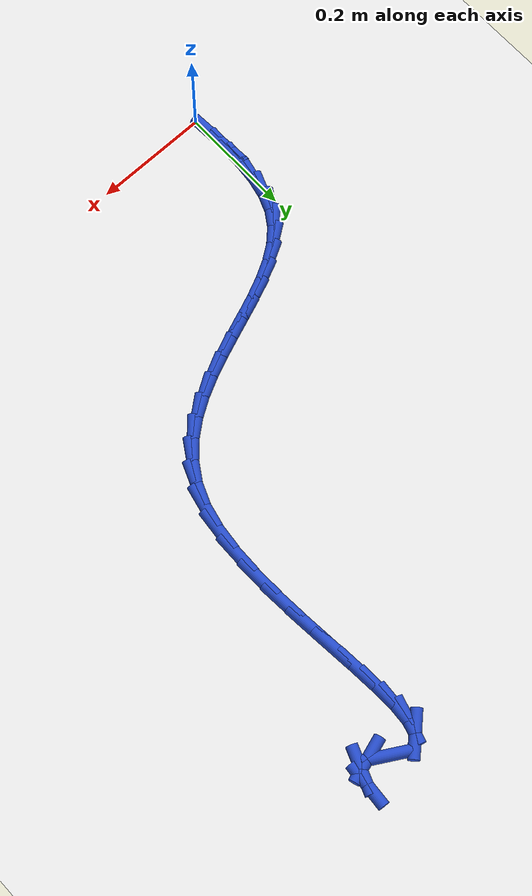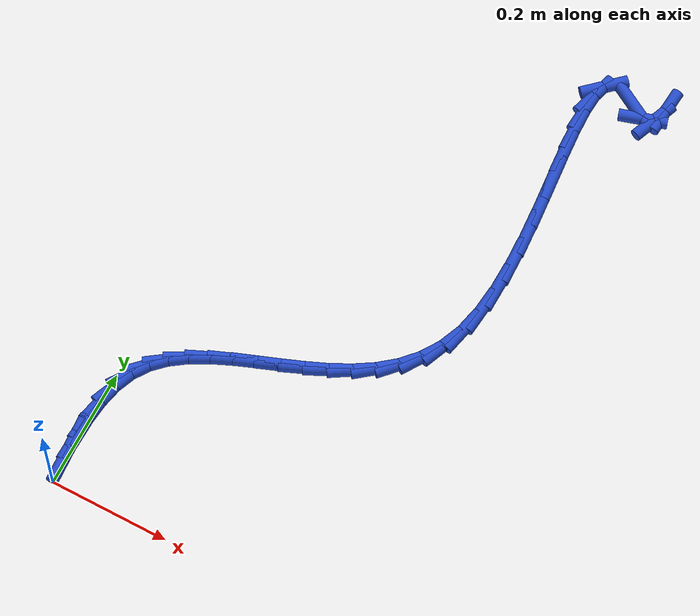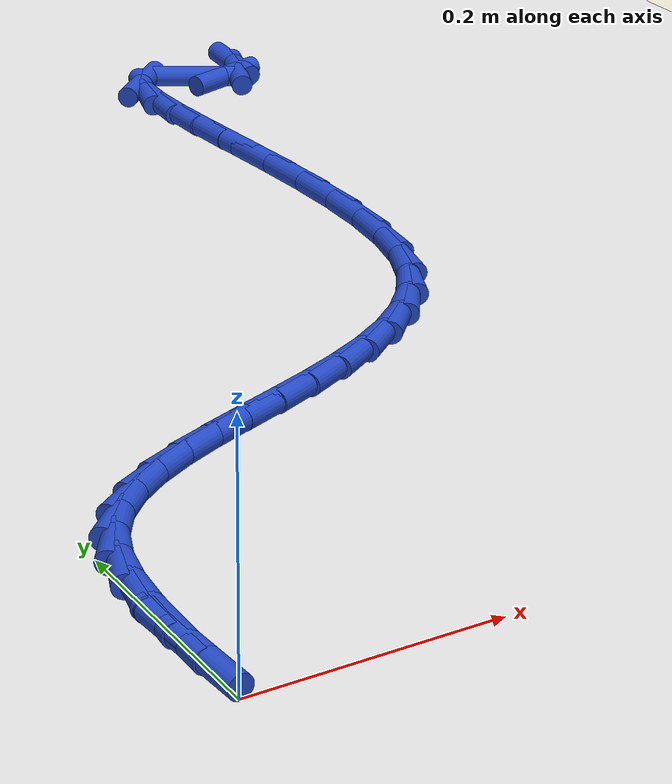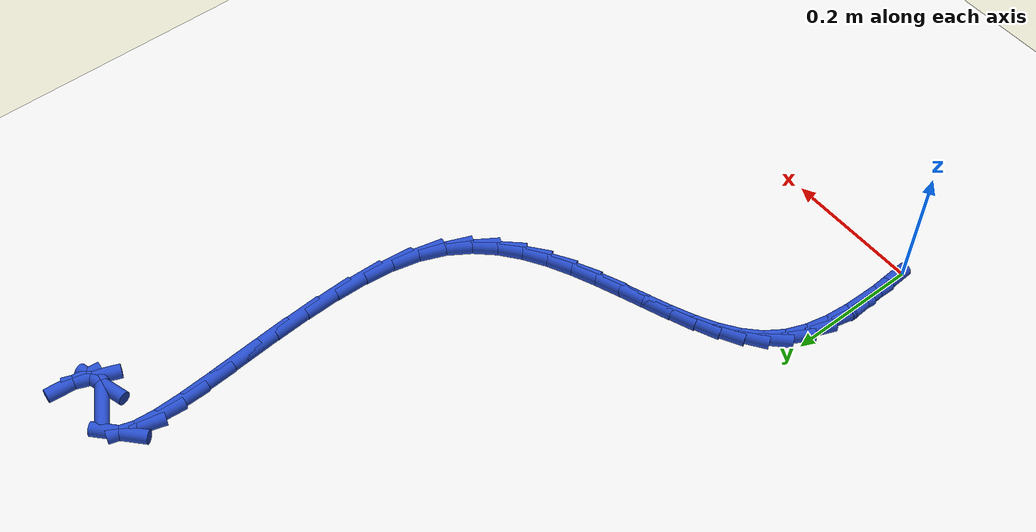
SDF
<sdf version="1.6">
 <world name="default">
  <model name="ground_plane">
   <static>1</static>
   <link name="link">
    <collision name="collision">
     <geometry><plane><normal>0 0 1</normal><size>100 100</size></plane></geometry>
     <surface><friction><ode><mu>100</mu><mu2>50</mu2></ode></friction></surface>
    </collision>
    <visual name="visual">
     <cast_shadows>0</cast_shadows>
     <geometry><plane><normal>0 0 1</normal><size>100 100</size></plane></geometry>
     <material>
      <script><uri>file://media/materials/scripts/gazebo.material</uri><name>Gazebo/WhiteGlow</name></script>
     </material>
    </visual>
   </link>
  </model>
  <model name="line">
   <link name="link_2">
    <pose>-0.003068716779485569 0.07493091604792003 0.01 0 1.57 1.547667495248963</pose>
    <collision name="collision">
     <geometry><cylinder><radius>0.01</radius><length>0.08</length></cylinder></geometry>
    </collision>
    <visual name="visual">
     <material>
      <script><name>Gazebo/Blue</name><uri>file://media/materials/scripts/gazebo.material</uri></script>
     </material>
     <geometry><cylinder><radius>0.01</radius><length>0.08</length></cylinder></geometry>
    </visual>
   </link>
   <link name="link_3">
    <pose>-0.0022136687239871274 0.1118932494490726 0.01 0 1.57 1.4685645919546335</pose>
    <collision name="collision">
     <geometry><cylinder><radius>0.01</radius><length>0.08</length></cylinder></geometry>
    </collision>
    <visual name="visual">
     <material>
      <script><name>Gazebo/Blue</name><uri>file://media/materials/scripts/gazebo.material</uri></script>
     </material>
     <geometry><cylinder><radius>0.01</radius><length>0.08</length></cylinder></geometry>
    </visual>
   </link>
   <link name="link_4">
    <pose>0.0014196297255197436 0.14730918002742974 0.01 0 1.57 1.3528270540345078</pose>
    <collision name="collision">
     <geometry><cylinder><radius>0.01</radius><length>0.08</length></cylinder></geometry>
    </collision>
    <visual name="visual">
     <material>
      <script><name>Gazebo/Blue</name><uri>file://media/materials/scripts/gazebo.material</uri></script>
     </material>
     <geometry><cylinder><radius>0.01</radius><length>0.08</length></cylinder></geometry>
    </visual>
   </link>
   <link name="link_5">
    <pose>0.008720163141920746 0.1802704679772984 0.01 0 1.57 1.1897835376856196</pose>
    <collision name="collision">
     <geometry><cylinder><radius>0.01</radius><length>0.08</length></cylinder></geometry>
    </collision>
    <visual name="visual">
     <material>
      <script><name>Gazebo/Blue</name><uri>file://media/materials/scripts/gazebo.material</uri></script>
     </material>
     <geometry><cylinder><radius>0.01</radius><length>0.08</length></cylinder></geometry>
    </visual>
   </link>
   <link name="link_6">
    <pose>0.020576916098101576 0.2098688734929859 0.01 0 1.57 0.9781830634710151</pose>
    <collision name="collision">
     <geometry><cylinder><radius>0.01</radius><length>0.08</length></cylinder></geometry>
    </collision>
    <visual name="visual">
     <material>
      <script><name>Gazebo/Blue</name><uri>file://media/materials/scripts/gazebo.material</uri></script>
     </material>
     <geometry><cylinder><radius>0.01</radius><length>0.08</length></cylinder></geometry>
    </visual>
   </link>
   <link name="link_7">
    <pose>0.03772929596335416 0.23534218453826133 0.01 0 1.57 0.7739168149898306</pose>
    <collision name="collision">
     <geometry><cylinder><radius>0.01</radius><length>0.08</length></cylinder></geometry>
    </collision>
    <visual name="visual">
     <material>
      <script><name>Gazebo/Blue</name><uri>file://media/materials/scripts/gazebo.material</uri></script>
     </material>
     <geometry><cylinder><radius>0.01</radius><length>0.08</length></cylinder></geometry>
    </visual>
   </link>
   <link name="link_8">
    <pose>0.05985455826962366 0.25696513628483125 0.01 0 1.57 0.6126361274357889</pose>
    <collision name="collision">
     <geometry><cylinder><radius>0.01</radius><length>0.08</length></cylinder></geometry>
    </collision>
    <visual name="visual">
     <material>
      <script><name>Gazebo/Blue</name><uri>file://media/materials/scripts/gazebo.material</uri></script>
     </material>
     <geometry><cylinder><radius>0.01</radius><length>0.08</length></cylinder></geometry>
    </visual>
   </link>
   <link name="link_9">
    <pose>0.08617033610541139 0.2754611796083885 0.01 0 1.57 0.4962904917748917</pose>
    <collision name="collision">
     <geometry><cylinder><radius>0.01</radius><length>0.08</length></cylinder></geometry>
    </collision>
    <visual name="visual">
     <material>
      <script><name>Gazebo/Blue</name><uri>file://media/materials/scripts/gazebo.material</uri></script>
     </material>
     <geometry><cylinder><radius>0.01</radius><length>0.08</length></cylinder></geometry>
    </visual>
   </link>
   <link name="link_10">
    <pose>0.1158924243633311 0.2915555599605287 0.01 0 1.57 0.41932789781211516</pose>
    <collision name="collision">
     <geometry><cylinder><radius>0.01</radius><length>0.08</length></cylinder></geometry>
    </collision>
    <visual name="visual">
     <material>
      <script><name>Gazebo/Blue</name><uri>file://media/materials/scripts/gazebo.material</uri></script>
     </material>
     <geometry><cylinder><radius>0.01</radius><length>0.08</length></cylinder></geometry>
    </visual>
   </link>
   <link name="link_11">
    <pose>0.1482366179359966 0.3059735227928481 0.01 0 1.57 0.37529912207708577</pose>
    <collision name="collision">
     <geometry><cylinder><radius>0.01</radius><length>0.08</length></cylinder></geometry>
    </collision>
    <visual name="visual">
     <material>
      <script><name>Gazebo/Blue</name><uri>file://media/materials/scripts/gazebo.material</uri></script>
     </material>
     <geometry><cylinder><radius>0.01</radius><length>0.08</length></cylinder></geometry>
    </visual>
   </link>
   <link name="link_12">
    <pose>0.18241871171602173 0.31944031355694236 0.01 0 1.57 0.3594533208540768</pose>
    <collision name="collision">
     <geometry><cylinder><radius>0.01</radius><length>0.08</length></cylinder></geometry>
    </collision>
    <visual name="visual">
     <material>
      <script><name>Gazebo/Blue</name><uri>file://media/materials/scripts/gazebo.material</uri></script>
     </material>
     <geometry><cylinder><radius>0.01</radius><length>0.08</length></cylinder></geometry>
    </visual>
   </link>
   <link name="link_13">
    <pose>0.21765450059602023 0.3326811777044076 0.01 0 1.57 0.3692406748582325</pose>
    <collision name="collision">
     <geometry><cylinder><radius>0.01</radius><length>0.08</length></cylinder></geometry>
    </collision>
    <visual name="visual">
     <material>
      <script><name>Gazebo/Blue</name><uri>file://media/materials/scripts/gazebo.material</uri></script>
     </material>
     <geometry><cylinder><radius>0.01</radius><length>0.08</length></cylinder></geometry>
    </visual>
   </link>
   <link name="link_14">
    <pose>0.25315977946860596 0.3464213606868398 0.01 0 1.57 0.4041380281691263</pose>
    <collision name="collision">
     <geometry><cylinder><radius>0.01</radius><length>0.08</length></cylinder></geometry>
    </collision>
    <visual name="visual">
     <material>
      <script><name>Gazebo/Blue</name><uri>file://media/materials/scripts/gazebo.material</uri></script>
     </material>
     <geometry><cylinder><radius>0.01</radius><length>0.08</length></cylinder></geometry>
    </visual>
   </link>
   <link name="link_15">
    <pose>0.2881503432263929 0.3613861079558349 0.01 0 1.57 0.4652783785459308</pose>
    <collision name="collision">
     <geometry><cylinder><radius>0.01</radius><length>0.08</length></cylinder></geometry>
    </collision>
    <visual name="visual">
     <material>
      <script><name>Gazebo/Blue</name><uri>file://media/materials/scripts/gazebo.material</uri></script>
     </material>
     <geometry><cylinder><radius>0.01</radius><length>0.08</length></cylinder></geometry>
    </visual>
   </link>
   <link name="link_16">
    <pose>0.32184198676199444 0.37830066496298875 0.01 0 1.57 0.5548204501725951</pose>
    <collision name="collision">
     <geometry><cylinder><radius>0.01</radius><length>0.08</length></cylinder></geometry>
    </collision>
    <visual name="visual">
     <material>
      <script><name>Gazebo/Blue</name><uri>file://media/materials/scripts/gazebo.material</uri></script>
     </material>
     <geometry><cylinder><radius>0.01</radius><length>0.08</length></cylinder></geometry>
    </visual>
   </link>
   <link name="link_17">
    <pose>0.35345050496802455 0.3978902771598971 0.01 0 1.57 0.6746764997015885</pose>
    <collision name="collision">
     <geometry><cylinder><radius>0.01</radius><length>0.08</length></cylinder></geometry>
    </collision>
    <visual name="visual">
     <material>
      <script><name>Gazebo/Blue</name><uri>file://media/materials/scripts/gazebo.material</uri></script>
     </material>
     <geometry><cylinder><radius>0.01</radius><length>0.08</length></cylinder></geometry>
    </visual>
   </link>
   <link name="link_18">
    <pose>0.3821916927370974 0.4208801899981567 0.01 0 1.57 0.8241834614877726</pose>
    <collision name="collision">
     <geometry><cylinder><radius>0.01</radius><length>0.08</length></cylinder></geometry>
    </collision>
    <visual name="visual">
     <material>
      <script><name>Gazebo/Blue</name><uri>file://media/materials/scripts/gazebo.material</uri></script>
     </material>
     <geometry><cylinder><radius>0.01</radius><length>0.08</length></cylinder></geometry>
    </visual>
   </link>
   <link name="link_19">
    <pose>0.4072813449618263 0.4479956489293626 0.01 0 1.57 0.9971562326662705</pose>
    <collision name="collision">
     <geometry><cylinder><radius>0.01</radius><length>0.08</length></cylinder></geometry>
    </collision>
    <visual name="visual">
     <material>
      <script><name>Gazebo/Blue</name><uri>file://media/materials/scripts/gazebo.material</uri></script>
     </material>
     <geometry><cylinder><radius>0.01</radius><length>0.08</length></cylinder></geometry>
    </visual>
   </link>
   <link name="link_20">
    <pose>0.42793525653482534 0.4799618994051113 0.01 0 1.57 1.1807488606486525</pose>
    <collision name="collision">
     <geometry><cylinder><radius>0.01</radius><length>0.08</length></cylinder></geometry>
    </collision>
    <visual name="visual">
     <material>
      <script><name>Gazebo/Blue</name><uri>file://media/materials/scripts/gazebo.material</uri></script>
     </material>
     <geometry><cylinder><radius>0.01</radius><length>0.08</length></cylinder></geometry>
    </visual>
   </link>
   <link name="link_21">
    <pose>0.44336926136309135 0.5175041380165123 0.01 0 1.57 1.3492541508872864</pose>
    <collision name="collision">
     <geometry><cylinder><radius>0.01</radius><length>0.08</length></cylinder></geometry>
    </collision>
    <visual name="visual">
     <material>
      <script><name>Gazebo/Blue</name><uri>file://media/materials/scripts/gazebo.material</uri></script>
     </material>
     <geometry><cylinder><radius>0.01</radius><length>0.08</length></cylinder></geometry>
    </visual>
   </link>
   <link name="link_22">
    <pose>0.4531465412502351 0.5609125528867348 0.01 0 1.57 1.469672239100606</pose>
    <collision name="collision">
     <geometry><cylinder><radius>0.01</radius><length>0.08</length></cylinder></geometry>
    </collision>
    <visual name="visual">
     <material>
      <script><name>Gazebo/Blue</name><uri>file://media/materials/scripts/gazebo.material</uri></script>
     </material>
     <geometry><cylinder><radius>0.01</radius><length>0.08</length></cylinder></geometry>
    </visual>
   </link>
   <link name="link_23">
    <pose>0.4580241715196973 0.6089821343962547 0.01 0 1.57 1.5514378879321196</pose>
    <collision name="collision">
     <geometry><cylinder><radius>0.01</radius><length>0.08</length></cylinder></geometry>
    </collision>
    <visual name="visual">
     <material>
      <script><name>Gazebo/Blue</name><uri>file://media/materials/scripts/gazebo.material</uri></script>
     </material>
     <geometry><cylinder><radius>0.01</radius><length>0.08</length></cylinder></geometry>
    </visual>
   </link>
   <link name="link_24">
    <pose>0.4590155392117438 0.6601868755383794 0.01 0 1.57 -1.5351861428149904</pose>
    <collision name="collision">
     <geometry><cylinder><radius>0.01</radius><length>0.08</length></cylinder></geometry>
    </collision>
    <visual name="visual">
     <material>
      <script><name>Gazebo/Blue</name><uri>file://media/materials/scripts/gazebo.material</uri></script>
     </material>
     <geometry><cylinder><radius>0.01</radius><length>0.08</length></cylinder></geometry>
    </visual>
   </link>
   <link name="link_25">
    <pose>0.4571340313666405 0.7130007693064166 0.01 0 1.57 -1.5001916576983663</pose>
    <collision name="collision">
     <geometry><cylinder><radius>0.01</radius><length>0.08</length></cylinder></geometry>
    </collision>
    <visual name="visual">
     <material>
      <script><name>Gazebo/Blue</name><uri>file://media/materials/scripts/gazebo.material</uri></script>
     </material>
     <geometry><cylinder><radius>0.01</radius><length>0.08</length></cylinder></geometry>
    </visual>
   </link>
   <link name="link_26">
    <pose>0.4533930350246533 0.7658978086936737 0.01 0 1.57 -1.4818821998179645</pose>
    <collision name="collision">
     <geometry><cylinder><radius>0.01</radius><length>0.08</length></cylinder></geometry>
    </collision>
    <visual name="visual">
     <material>
      <script><name>Gazebo/Blue</name><uri>file://media/materials/scripts/gazebo.material</uri></script>
     </material>
     <geometry><cylinder><radius>0.01</radius><length>0.08</length></cylinder></geometry>
    </visual>
   </link>
   <link name="link_27">
    <pose>0.4488059372260478 0.8173519866934584 0.01 0 1.57 -1.4798898143417276</pose>
    <collision name="collision">
     <geometry><cylinder><radius>0.01</radius><length>0.08</length></cylinder></geometry>
    </collision>
    <visual name="visual">
     <material>
      <script><name>Gazebo/Blue</name><uri>file://media/materials/scripts/gazebo.material</uri></script>
     </material>
     <geometry><cylinder><radius>0.01</radius><length>0.08</length></cylinder></geometry>
    </visual>
   </link>
   <link name="link_28">
    <pose>0.44438612501109 0.8658372962990784 0.01 0 1.57 -1.4972961525092776</pose>
    <collision name="collision">
     <geometry><cylinder><radius>0.01</radius><length>0.08</length></cylinder></geometry>
    </collision>
    <visual name="visual">
     <material>
      <script><name>Gazebo/Blue</name><uri>file://media/materials/scripts/gazebo.material</uri></script>
     </material>
     <geometry><cylinder><radius>0.01</radius><length>0.08</length></cylinder></geometry>
    </visual>
   </link>
   <link name="link_29">
    <pose>0.4411469854200457 0.9098277305038412 0.01 0 1.57 -1.543279116635272</pose>
    <collision name="collision">
     <geometry><cylinder><radius>0.01</radius><length>0.08</length></cylinder></geometry>
    </collision>
    <visual name="visual">
     <material>
      <script><name>Gazebo/Blue</name><uri>file://media/materials/scripts/gazebo.material</uri></script>
     </material>
     <geometry><cylinder><radius>0.01</radius><length>0.08</length></cylinder></geometry>
    </visual>
   </link>
   <link name="link_30">
    <pose>0.44010190549318073 0.9477972823010544 0.01 0 1.57 1.4998381603100779</pose>
    <collision name="collision">
     <geometry><cylinder><radius>0.01</radius><length>0.08</length></cylinder></geometry>
    </collision>
    <visual name="visual">
     <material>
      <script><name>Gazebo/Blue</name><uri>file://media/materials/scripts/gazebo.material</uri></script>
     </material>
     <geometry><cylinder><radius>0.01</radius><length>0.08</length></cylinder></geometry>
    </visual>
   </link>
   <link name="link_31">
    <pose>0.4422642722707609 0.9782199446840255 0.01 0 1.57 1.2802735325666097</pose>
    <collision name="collision">
     <geometry><cylinder><radius>0.01</radius><length>0.08</length></cylinder></geometry>
    </collision>
    <visual name="visual">
     <material>
      <script><name>Gazebo/Blue</name><uri>file://media/materials/scripts/gazebo.material</uri></script>
     </material>
     <geometry><cylinder><radius>0.01</radius><length>0.08</length></cylinder></geometry>
    </visual>
   </link>
   <link name="link_32">
    <pose>0.44864747279305206 0.9995697106460621 0.01 0 1.57 0.7466770147120076</pose>
    <collision name="collision">
     <geometry><cylinder><radius>0.01</radius><length>0.08</length></cylinder></geometry>
    </collision>
    <visual name="visual">
     <material>
      <script><name>Gazebo/Blue</name><uri>file://media/materials/scripts/gazebo.material</uri></script>
     </material>
     <geometry><cylinder><radius>0.01</radius><length>0.08</length></cylinder></geometry>
    </visual>
   </link>
   <link name="link_35">
    <pose>0.5032322706969538 0.993969918694655 0.01 0 1.57 -0.5311312374379878</pose>
    <collision name="collision">
     <geometry><cylinder><radius>0.01</radius><length>0.08</length></cylinder></geometry>
    </collision>
    <visual name="visual">
     <material>
      <script><name>Gazebo/Blue</name><uri>file://media/materials/scripts/gazebo.material</uri></script>
     </material>
     <geometry><cylinder><radius>0.01</radius><length>0.08</length></cylinder></geometry>
    </visual>
   </link>
   <link name="link_36">
    <pose>0.5293442271808474 0.9786307733605706 0.01 0 1.57 0.2976537084486274</pose>
    <collision name="collision">
     <geometry><cylinder><radius>0.01</radius><length>0.08</length></cylinder></geometry>
    </collision>
    <visual name="visual">
     <material>
      <script><name>Gazebo/Blue</name><uri>file://media/materials/scripts/gazebo.material</uri></script>
     </material>
     <geometry><cylinder><radius>0.01</radius><length>0.08</length></cylinder></geometry>
    </visual>
   </link>
   <link name="link_37">
    <pose>0.5462599910329452 0.9838199766287489 0.01 0 1.57 1.195057549474425</pose>
    <collision name="collision">
     <geometry><cylinder><radius>0.01</radius><length>0.08</length></cylinder></geometry>
    </collision>
    <visual name="visual">
     <material>
      <script><name>Gazebo/Blue</name><uri>file://media/materials/scripts/gazebo.material</uri></script>
     </material>
     <geometry><cylinder><radius>0.01</radius><length>0.08</length></cylinder></geometry>
    </visual>
   </link>
   <link name="link_38">
    <pose>0.5552372002120606 1.0065770431607142 0.01 0 1.57 1.4927213225593474</pose>
    <collision name="collision">
     <geometry><cylinder><radius>0.01</radius><length>0.08</length></cylinder></geometry>
    </collision>
    <visual name="visual">
     <material>
      <script><name>Gazebo/Blue</name><uri>file://media/materials/scripts/gazebo.material</uri></script>
     </material>
     <geometry><cylinder><radius>0.01</radius><length>0.08</length></cylinder></geometry>
    </visual>
   </link>
   <link name="link_291">
    <pose>-0.0022138987507652514 0.03752085466116721 0.01 0 1.57 -1.5120454289925738</pose>
    <collision name="collision">
     <geometry><cylinder><radius>0.01</radius><length>0.08</length></cylinder></geometry>
    </collision>
    <visual name="visual">
     <material>
      <script><name>Gazebo/Blue</name><uri>file://media/materials/scripts/gazebo.material</uri></script>
     </material>
     <geometry><cylinder><radius>0.01</radius><length>0.08</length></cylinder></geometry>
    </visual>
   </link>
   <link name="link_292">
    <pose>-0.004503914674718004 0.07645439629994985 0.01 0 1.57 -1.5119545121253644</pose>
    <collision name="collision">
     <geometry><cylinder><radius>0.01</radius><length>0.08</length></cylinder></geometry>
    </collision>
    <visual name="visual">
     <material>
      <script><name>Gazebo/Blue</name><uri>file://media/materials/scripts/gazebo.material</uri></script>
     </material>
     <geometry><cylinder><radius>0.01</radius><length>0.08</length></cylinder></geometry>
    </visual>
   </link>
  </model>
 </world>
</sdf>
